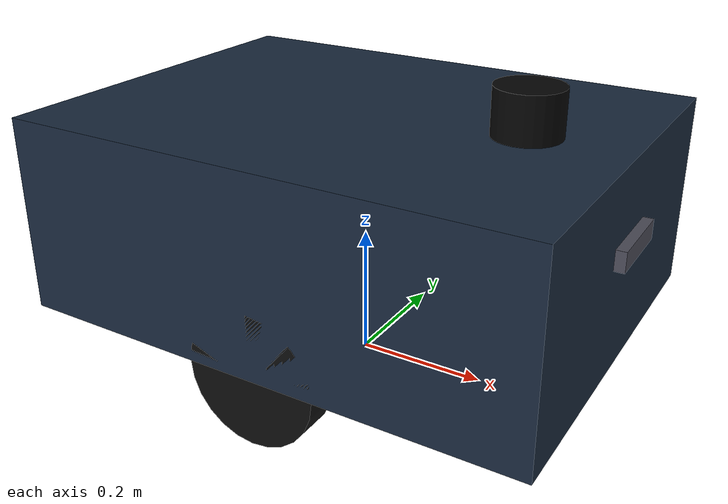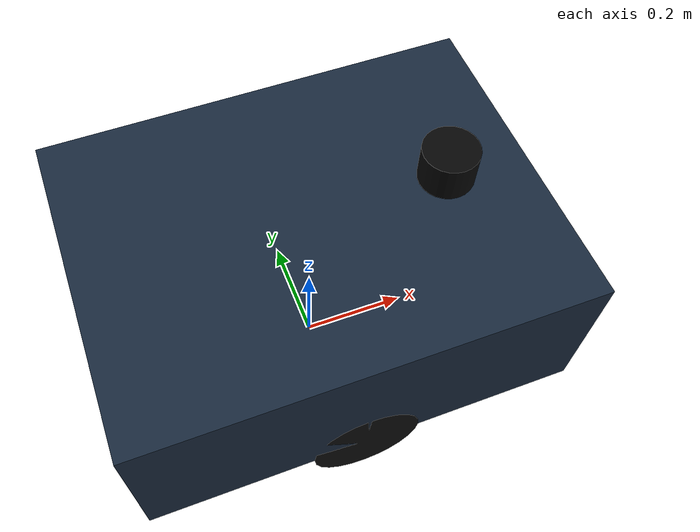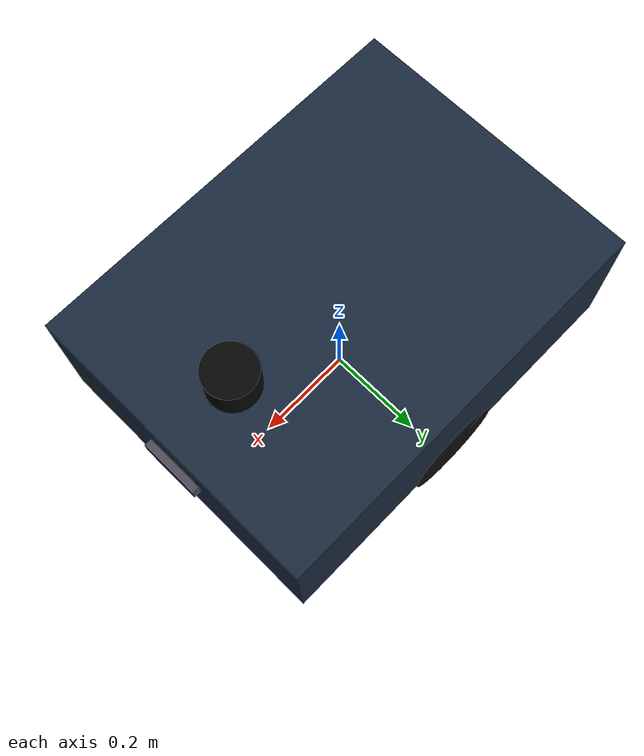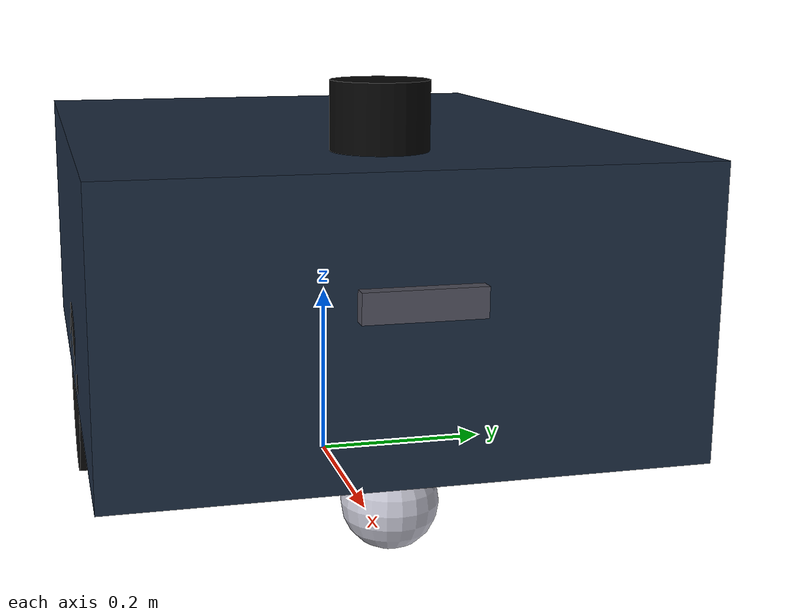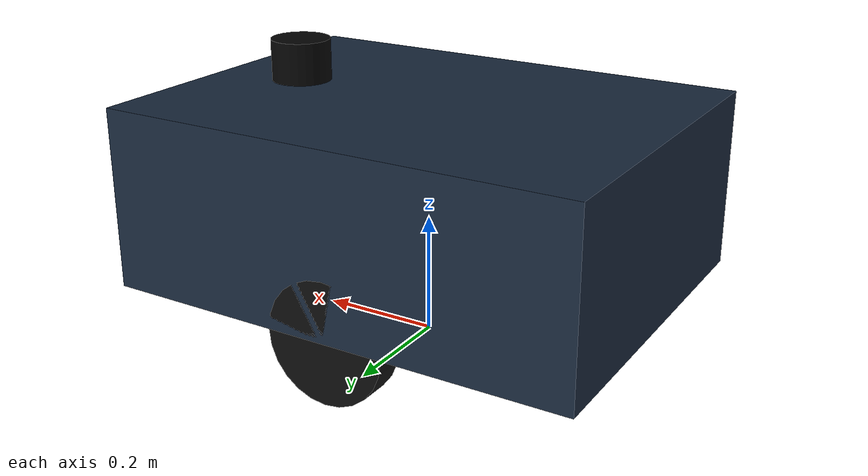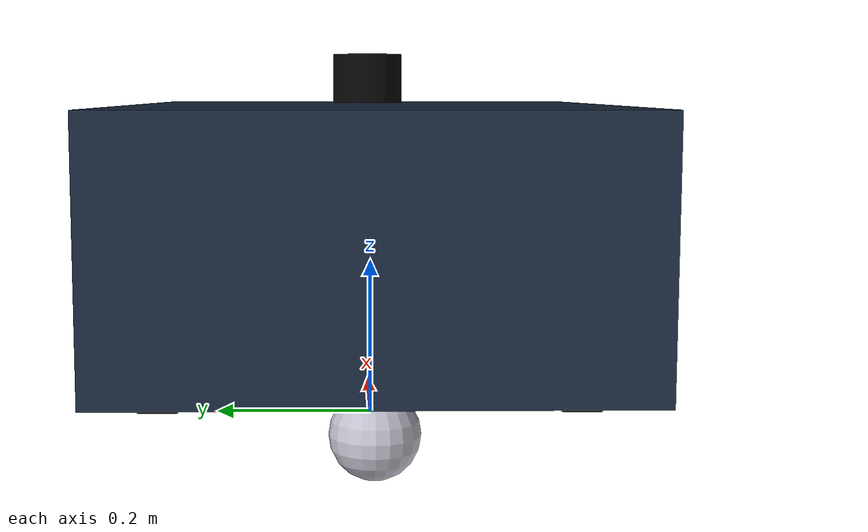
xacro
<?xml version="1.0"?>
<!-- AURA-DRIVE™ 2026: INDUSTRIAL AUTONOMOUS MOBILE ROBOT (AMR) URDF/XACRO  -->
<!-- Standards Compliance: ISO 3691-4 (Safety of Industrial Trucks)          -->
<!-- Kinematics: Differential Drive with Dual Passive Swivel Casters         -->
<!-- Sensor Architecture: 3D LiDAR (360 deg) + Front RGB-D Depth Camera      -->
<robot name="aura_amr" xmlns:xacro="http://www.ros.org/wiki/xacro">

  <!-- ======================== PROPERTIES =============================== -->
  <xacro:property name="chassis_length" value="0.80"/>
  <xacro:property name="chassis_width"  value="0.60"/>
  <xacro:property name="chassis_height" value="0.30"/>
  <xacro:property name="chassis_mass"   value="45.0"/>

  <xacro:property name="wheel_radius"   value="0.10"/>
  <xacro:property name="wheel_width"    value="0.05"/>
  <xacro:property name="wheel_separation" value="0.55"/>
  <xacro:property name="wheel_mass"     value="3.5"/>

  <xacro:property name="caster_radius"  value="0.05"/>
  <xacro:property name="caster_mass"    value="1.2"/>

  <!-- ======================== BASE FOOTPRINT =========================== -->
  <link name="base_footprint"/>

  <joint name="base_footprint_joint" type="fixed">
    <parent link="base_footprint"/>
    <child link="base_link"/>
    <origin xyz="0 0 ${wheel_radius}" rpy="0 0 0"/>
  </joint>

  <!-- ======================== BASE LINK (CHASSIS) ====================== -->
  <link name="base_link">
    <inertial>
      <mass value="${chassis_mass}"/>
      <origin xyz="0 0 ${chassis_height/2}" rpy="0 0 0"/>
      <inertia ixx="${(1/12) * chassis_mass * (chassis_width*chassis_width + chassis_height*chassis_height)}"
               ixy="0.0" ixz="0.0"
               iyy="${(1/12) * chassis_mass * (chassis_length*chassis_length + chassis_height*chassis_height)}"
               iyz="0.0"
               izz="${(1/12) * chassis_mass * (chassis_length*chassis_length + chassis_width*chassis_width)}"/>
    </inertial>

    <visual>
      <origin xyz="0 0 ${chassis_height/2}" rpy="0 0 0"/>
      <geometry>
        <box size="${chassis_length} ${chassis_width} ${chassis_height}"/>
      </geometry>
      <material name="industrial_blue">
        <color rgba="0.10 0.16 0.24 1.0"/>
      </material>
    </visual>

    <collision>
      <origin xyz="0 0 ${chassis_height/2}" rpy="0 0 0"/>
      <geometry>
        <box size="${chassis_length} ${chassis_width} ${chassis_height}"/>
      </geometry>
    </collision>
  </link>

  <!-- ======================== DRIVE WHEELS ============================= -->
  <xacro:macro name="drive_wheel" params="prefix side_y">
    <link name="${prefix}_wheel_link">
      <inertial>
        <mass value="${wheel_mass}"/>
        <origin xyz="0 0 0" rpy="${pi/2} 0 0"/>
        <inertia ixx="${(1/12)*wheel_mass*(3*wheel_radius*wheel_radius + wheel_width*wheel_width)}"
                 ixy="0.0" ixz="0.0"
                 iyy="${(1/12)*wheel_mass*(3*wheel_radius*wheel_radius + wheel_width*wheel_width)}"
                 iyz="0.0"
                 izz="${0.5*wheel_mass*wheel_radius*wheel_radius}"/>
      </inertial>
      <visual>
        <origin xyz="0 0 0" rpy="${pi/2} 0 0"/>
        <geometry>
          <cylinder radius="${wheel_radius}" length="${wheel_width}"/>
        </geometry>
        <material name="tire_rubber">
          <color rgba="0.05 0.05 0.05 1.0"/>
        </material>
      </visual>
      <collision>
        <origin xyz="0 0 0" rpy="${pi/2} 0 0"/>
        <geometry>
          <cylinder radius="${wheel_radius}" length="${wheel_width}"/>
        </geometry>
      </collision>
    </link>

    <joint name="${prefix}_wheel_joint" type="continuous">
      <parent link="base_link"/>
      <child link="${prefix}_wheel_link"/>
      <origin xyz="0 ${side_y * wheel_separation / 2} 0" rpy="0 0 0"/>
      <axis xyz="0 1 0"/>
    </joint>
  </xacro:macro>

  <xacro:drive_wheel prefix="left" side_y="1"/>
  <xacro:drive_wheel prefix="right" side_y="-1"/>

  <!-- ======================== CASTER WHEELS ============================ -->
  <xacro:macro name="caster_wheel" params="prefix offset_x">
    <link name="${prefix}_caster_link">
      <inertial>
        <mass value="${caster_mass}"/>
        <origin xyz="0 0 0" rpy="0 0 0"/>
        <inertia ixx="${0.4*caster_mass*caster_radius*caster_radius}" ixy="0" ixz="0"
                 iyy="${0.4*caster_mass*caster_radius*caster_radius}" iyz="0"
                 izz="${0.4*caster_mass*caster_radius*caster_radius}"/>
      </inertial>
      <visual>
        <geometry>
          <sphere radius="${caster_radius}"/>
        </geometry>
        <material name="caster_metal">
          <color rgba="0.75 0.75 0.80 1.0"/>
        </material>
      </visual>
      <collision>
        <geometry>
          <sphere radius="${caster_radius}"/>
        </geometry>
      </collision>
    </link>

    <joint name="${prefix}_caster_joint" type="fixed">
      <parent link="base_link"/>
      <child link="${prefix}_caster_link"/>
      <origin xyz="${offset_x} 0 ${-wheel_radius + caster_radius}" rpy="0 0 0"/>
    </joint>
  </xacro:macro>

  <xacro:caster_wheel prefix="front" offset_x="0.30"/>
  <xacro:caster_wheel prefix="rear"  offset_x="-0.30"/>

  <!-- ======================== 3D LIDAR SENSOR ========================== -->
  <link name="laser_link">
    <visual>
      <geometry>
        <cylinder radius="0.05" length="0.07"/>
      </geometry>
      <material name="lidar_black">
        <color rgba="0.02 0.02 0.02 1.0"/>
      </material>
    </visual>
    <collision>
      <geometry>
        <cylinder radius="0.05" length="0.07"/>
      </geometry>
    </collision>
  </link>

  <joint name="laser_joint" type="fixed">
    <parent link="base_link"/>
    <child link="laser_link"/>
    <origin xyz="0.25 0.0 ${chassis_height + 0.035}" rpy="0 0 0"/>
  </joint>

  <!-- ======================== RGB-D CAMERA ============================= -->
  <link name="camera_link">
    <visual>
      <geometry>
        <box size="0.03 0.12 0.03"/>
      </geometry>
      <material name="camera_gray">
        <color rgba="0.30 0.30 0.35 1.0"/>
      </material>
    </visual>
    <collision>
      <geometry>
        <box size="0.03 0.12 0.03"/>
      </geometry>
    </collision>
  </link>

  <joint name="camera_joint" type="fixed">
    <parent link="base_link"/>
    <child link="camera_link"/>
    <origin xyz="${chassis_length/2} 0.0 0.18" rpy="0 0 0"/>
  </joint>

  <link name="camera_optical_frame"/>
  <joint name="camera_optical_joint" type="fixed">
    <parent link="camera_link"/>
    <child link="camera_optical_frame"/>
    <origin xyz="0 0 0" rpy="${-pi/2} 0 ${-pi/2}"/>
  </joint>

</robot>
